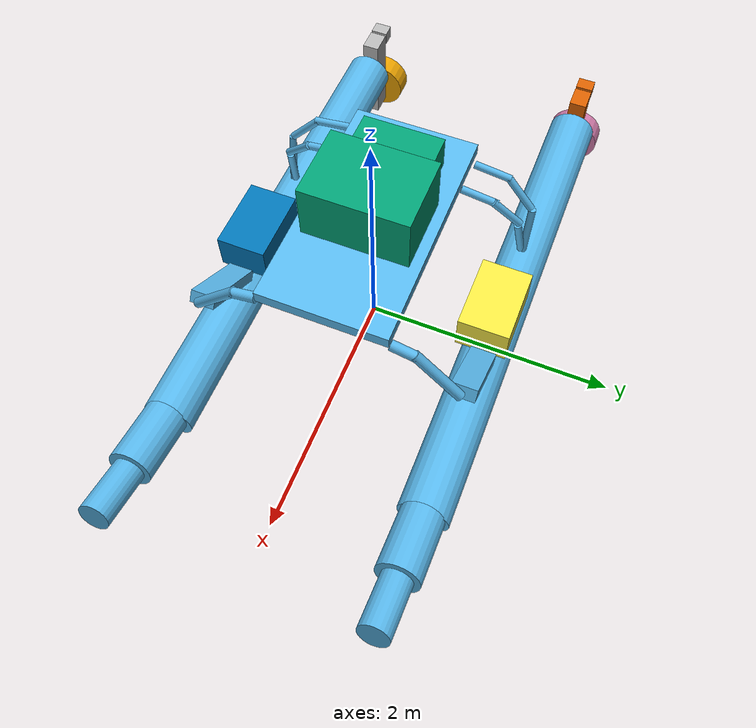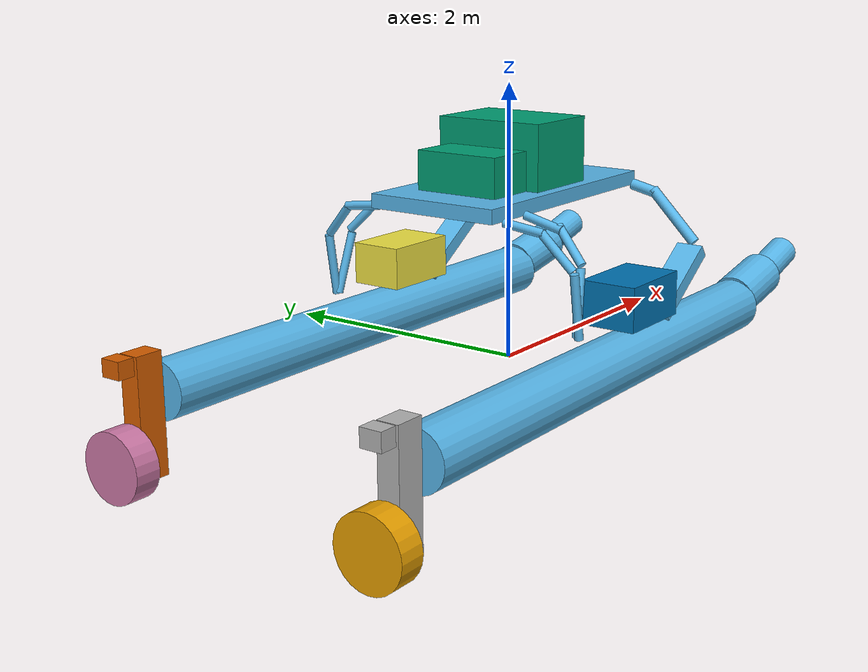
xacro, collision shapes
<?xml version="1.0"?>
<robot xmlns:xacro="http://ros.org/wiki/xacro" name="wam-v">
  <xacro:include filename="$(find wamv_description)/urdf/wamv_base.urdf.xacro" />

  <xacro:include filename="$(find wamv_description)/urdf/cpu_cases.xacro" />
  <xacro:cpu_cases position="-0.15 0 1.53" orientation="0 0 0" />

  <xacro:include filename="$(find wamv_description)/urdf/battery.xacro" />
  <xacro:battery prefix="left" position="0 1 0.45" orientation="0 0 0" />
  <xacro:battery prefix="right" position="0 -1 0.45" orientation="0 0 0" />

  <xacro:include filename="$(find wamv_description)/urdf/thrusters/engine.xacro" />
  <xacro:engine prefix="left" enable_dummy="false" position="-2.373776 1.027135 0.318237" />
  <xacro:engine prefix="right" enable_dummy="false" position="-2.373776 -1.027135 0.318237" />
  <xacro:include filename="$(find wamv_description)/urdf/wamv.ros2_control.xacro" />
  <!-- Engine control plusing was removed, because we do not use ros2_control. We use protolink insted of it. -->

  <xacro:include filename="$(find wamv_description)/urdf/sensors/lidar.xacro" />
  <xacro:lidar prefix="front" position="1.0 0 1.2" orientation="0 0 0" />
  <xacro:lidar prefix="rear" position="-1.0 0 1.2" orientation="0 0 3.14159" />
  <xacro:lidar prefix="right" position="0.0 -0.6 1.2" orientation="0 0.5235983333333333 -1.570795" />
  <xacro:lidar prefix="left" position="0.0 0.6 1.2" orientation="0 0.5235983333333333 1.570795" />

  <xacro:include filename="$(find wamv_description)/urdf/sensors/camera.xacro" />
  <xacro:camera prefix="front_left" position="2.0 0.1 1.0" orientation="0 0 0.785398" />
  <xacro:camera prefix="front_right" position="2.0 -0.1 1.0" orientation="0 0 -0.785398" />
  <xacro:camera prefix="rear_left" position="-1.0 0.1 1.0" orientation="0 0 2.35619" />
  <xacro:camera prefix="rear_right" position="-1.0 -0.1 1.0" orientation="0 0 -2.35619" />
  <xacro:camera prefix="left" position="0.0 -0.6 1.2" orientation="0 0.0 -1.570795" />
  <xacro:camera prefix="right" position="0.0 0.6 1.2" orientation="0 0.0 1.570795" />

</robot>

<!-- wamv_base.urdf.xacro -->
<robot xmlns:xacro="http://ros.org/wiki/xacro" name="wam-v-base">
  <!-- Macro for creating the main collisions as simple shapes. -->
  <xacro:macro name="main_collisions" params="prefix reflect:=1">
    <!-- Main float -->
    <collision name="${prefix}_float">
      <origin xyz="-0.4 ${1.03*reflect} 0.2" rpy="${0*reflect} 1.57 0" />
      <geometry>
        <cylinder length="4" radius="0.2" />
      </geometry>
    </collision>

    <collision name="${prefix}_mid_float">
      <origin xyz="1.85 ${1.03*reflect} 0.3" rpy="${0*reflect} 1.38 0" />
      <geometry>
        <cylinder length="0.5" radius="0.17" />
      </geometry>
    </collision>
    <collision name="${prefix}_front_float">
      <origin xyz="2.3 ${1.03*reflect} 0.4" rpy="${0*reflect} 1.3 0" />
      <geometry>
        <cylinder length="0.45" radius="0.12" />
      </geometry>
    </collision>

    <!-- Front beam -->
    <collision name="front_${prefix}_beam_lower">
      <origin xyz="0.9 ${0.85*reflect} 1" rpy="${0.78*reflect} 0 0" />
      <geometry>
        <cylinder length="0.5" radius="0.04" />
      </geometry>
    </collision>

    <collision name="front_${prefix}_beam_upper">
      <origin xyz="0.9 ${0.6*reflect} 1.18" rpy="${1.35*reflect} 0 0" />
      <geometry>
        <cylinder length="0.2" radius="0.04" />
      </geometry>
    </collision>

    <!-- Mid beam -->
    <collision name="mid_${prefix}_beam_lower">
      <origin xyz="-0.65 ${0.99*reflect} 0.7" rpy="${0.1*reflect} 0.25 0" />
      <geometry>
        <cylinder length="0.45" radius="0.03" />
      </geometry>
    </collision>

    <collision name="mid_${prefix}_beam_medium">
      <origin xyz="-0.57 ${0.87*reflect} 1.05" rpy="${0.75*reflect} 0.25 0" />
      <geometry>
        <cylinder length="0.32" radius="0.03" />
      </geometry>
    </collision>

    <collision name="mid_${prefix}_beam_upper">
      <origin xyz="-0.55 ${0.65*reflect} 1.17" rpy="${1.35*reflect} 0.25 0" />
      <geometry>
        <cylinder length="0.3" radius="0.03" />
      </geometry>
    </collision>

    <!-- Rear beam -->
    <collision name="rear_${prefix}_beam_lower">
      <origin xyz="-0.74 ${1.03*reflect} 0.7" rpy="${0*reflect} -0.15 0" />
      <geometry>
        <cylinder length="0.45" radius="0.03" />
      </geometry>
    </collision>

    <collision name="rear_${prefix}_beam_medium">
      <origin xyz="-0.79 ${0.91*reflect} 1.05" rpy="${0.75*reflect} -0.15 0" />
      <geometry>
        <cylinder length="0.32" radius="0.03" />
      </geometry>
    </collision>

    <collision name="rear_${prefix}_beam_upper">
      <origin xyz="-0.81 ${0.67*reflect} 1.18" rpy="${1.45*reflect} -0.15 0" />
      <geometry>
        <cylinder length="0.3" radius="0.03" />
      </geometry>
    </collision>

    <!-- Joint -->
    <collision name="${prefix}_joint">
      <origin xyz="0.58 ${1.03*reflect} 0.6" rpy="${0*reflect} -0.6 0" />
      <geometry>
        <box size="0.65 0.2 0.1" />
      </geometry>
    </collision>
  </xacro:macro>

  <link name="base_link">
  </link>

  <joint name="dummy_joint" type = "fixed">
    <parent link="base_link"/>
    <child link="dummy_link"/>
  </joint>

  <!-- Basic model of the 16' WAM-V USV -->
  <link name="dummy_link">
    <visual>
      <geometry>
        <mesh filename="package://wamv_description/models/WAM-V-Base/mesh/WAM-V-Base.dae"/>
      </geometry>
    </visual>

    <!-- Left base collisions -->
    <xacro:main_collisions prefix="left" reflect="1" />

    <!-- Right side collisions -->
    <xacro:main_collisions prefix="right" reflect="-1" />

     <!-- Top base -->
    <collision name="top_base">
      <origin xyz="0 -0 1.25" rpy="0 0 0" />
      <geometry>
        <box size="1.85 1 0.1" />
      </geometry>
    </collision>

    <inertial>
      <!-- From WAM-V spec sheet -->
      <mass value="180.0"/>
      <inertia ixx="120.0" ixy="0.0" ixz="0.0" iyy="393" iyz="0.0" izz="446.0"/>
    </inertial>
  </link>

</robot>

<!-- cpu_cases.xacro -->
<robot xmlns:xacro="http://ros.org/wiki/xacro" name="wam-v-cpu_cases">
<xacro:macro name="cpu_cases" params="position:='0 0 0' orientation:='0 0 0'">
  <link name="cpu_cases_link">
    <visual name="cpu_cases_visual">
      <origin xyz="0.073 0 -1.53" rpy="0 0 0"/>
      <geometry>
        <mesh filename="package://wamv_description/models/cpu_cases/mesh/cpu_cases.dae"/>
      </geometry>
    </visual>
    <collision name="cpu_case_1_collision">
      <origin xyz="0.185 0 0" rpy="0 0 0"/>
      <geometry>
        <box size="0.595 0.83 0.47"/>
      </geometry>
    </collision>
    <collision name="cpu_case_2_collision">
      <origin xyz="-0.3 0 -0.092" rpy="0 0 0"/>
      <geometry>
        <box size="0.375 0.64 0.28"/>
      </geometry>
    </collision>
    <inertial>
      <mass value="20"/>
      <inertia
        ixx="1.51633333333333"
        iyy="1.93633333333333"
        izz="2.71633333333333"
        ixy="0"
        ixz="0"
        iyz="0"/>
    </inertial>
  </link>
  <joint name ="chasis_cpu_cases_joint" type="fixed">
    <origin xyz="${position}" rpy="${orientation}"/>
    <parent link="base_link"/>
    <child link="cpu_cases_link"/>
  </joint>
</xacro:macro>
</robot>

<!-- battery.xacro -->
<robot xmlns:xacro="http://ros.org/wiki/xacro" name="wam-v-batteries">
  <xacro:macro name="battery" params="prefix position:='0 0 0' orientation:='0 0 0'">
    <link name="${prefix}_battery_link">
      <visual name="${prefix}_battery_visual">
        <origin xyz="0 -1.03 -.45" rpy="0 0 0"/>
        <geometry>
          <mesh filename="package://wamv_description/models/battery/mesh/battery.dae"/>
        </geometry>
      </visual>
      <collision name="${prefix}_battery_collision">
        <origin xyz="0 0 .15" rpy="0 0 0"/>
        <geometry>
          <box size=".6 .4 .31"/>
        </geometry>
      </collision>
      <inertial>
        <origin xyz="0 0 .15" rpy=" 0 0 0"/>
        <mass value="23.5"/>
        <inertia
          ixx="0.5015291666666667"
          iyy="0.8931958333333333"
          izz="1.0183333333333333"
          ixy="0"
          ixz="0"
          iyz="0"/>
      </inertial>
    </link>
    <joint name ="${prefix}_chasis_battery_joint" type="fixed">
      <origin xyz="${position}" rpy="${orientation}"/>
      <parent link="base_link"/>
      <child link="${prefix}_battery_link"/>
    </joint>
  </xacro:macro>
</robot>

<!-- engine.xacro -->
<robot xmlns:xacro="http://ros.org/wiki/xacro" name="wam-v-two-engines">
  <!-- Macro for inserting an engine with its propeller. -->
  <xacro:macro name="engine" params="prefix enable_dummy position:='0 0 0' orientation:='0 0 0'">
    <link name="${prefix}_engine_link">
      <visual>
        <geometry>
          <mesh filename="package://wamv_description/models/engine/mesh/engine.dae"/>
        </geometry>
      </visual>
      <collision name="${prefix}_engine_vertical_axis_collision">
        <origin xyz="-0.16 0 -0.24" rpy="0 0 0" />
        <geometry>
          <box size="0.2 0.15 0.83" />
        </geometry>
      </collision>
      <collision name="${prefix}_engine_rear_end_collision">
        <origin xyz="-0.34 0 0.12" rpy="0 0 0" />
        <geometry>
          <box size="0.12 0.15 0.12" />
        </geometry>
      </collision>
      <inertial>
        <mass value="15"/>
        <inertia ixx="0.889245" ixy="0.0" ixz="0.0" iyy="0.911125" iyz="0.0" izz="0.078125"/>
      </inertial>
    </link>

    <link name="${prefix}_propeller_link">
      <visual>
        <geometry>
          <mesh filename="package://wamv_description/models/propeller/mesh/propeller.dae"/>
        </geometry>
      </visual>
      <collision name="${prefix}_propeller_collision">
        <origin xyz="-0.08 0 0" rpy="0 1.57 0" />
        <geometry>
          <cylinder length="0.18" radius="0.24" />
        </geometry>
      </collision>
      <inertial>
        <mass value="0.5"/>
        <inertia ixx="0.008545" ixy="0.0" ixz="0.0" iyy="0.008545" iyz="0.0" izz="0.0144"/>
      </inertial>
    </link>

    <joint name="${prefix}_chasis_engine_joint" type="revolute">
      <axis xyz="0 0 1"/>
      <limit lower="${-pi}" upper="${pi}" effort="10" velocity="10"/>
      <origin xyz="${position}" rpy="${orientation}"/>
      <parent link="base_link"/>
      <child link="${prefix}_engine_link"/>
    </joint>

    <joint name="${prefix}_engine_propeller_joint" type="continuous">
      <axis rpy="0 0 0" xyz="1 0 0"/>
      <parent link="${prefix}_engine_link"/>
      <child link="${prefix}_propeller_link"/>
      <origin rpy="0 0 0" xyz="-0.278156 0 -0.509371"/>
      <limit effort="100" velocity="100" />
      <dynamics friction="0.05" damping="0.05" />
    </joint>
  </xacro:macro>
</robot>

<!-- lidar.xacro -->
<robot xmlns:xacro="http://ros.org/wiki/xacro" name="lidar">
  <xacro:macro name="lidar" params="prefix position:='0 0 0' orientation:='0 0 0'">
    <link name="${prefix}_lidar_link">
    </link>
    <joint name ="${prefix}_lidar_joint" type="fixed">
      <origin xyz="${position}" rpy="${orientation}"/>
      <parent link="base_link"/>
      <child link="${prefix}_lidar_link"/>
    </joint>
  </xacro:macro>
</robot>

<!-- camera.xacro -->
<robot xmlns:xacro="http://ros.org/wiki/xacro" name="camera">
  <xacro:macro name="camera" params="prefix position:='0 0 0' orientation:='0 0 0'">
    <link name="${prefix}_camera_link">
    </link>
    <joint name ="${prefix}_camera_joint" type="fixed">
      <origin xyz="${position}" rpy="${orientation}"/>
      <parent link="base_link"/>
      <child link="${prefix}_camera_link"/>
    </joint>

    <link name="${prefix}_camera_optical_link">
    </link>
    <joint name ="${prefix}_camera_optical_joint" type="fixed">
      <origin xyz="0 0 0" rpy="-1.57079632679 0 -1.57079632679"/>
      <parent link="${prefix}_camera_link"/>
      <child link="${prefix}_camera_optical_link"/>
    </joint>
  </xacro:macro>
</robot>
